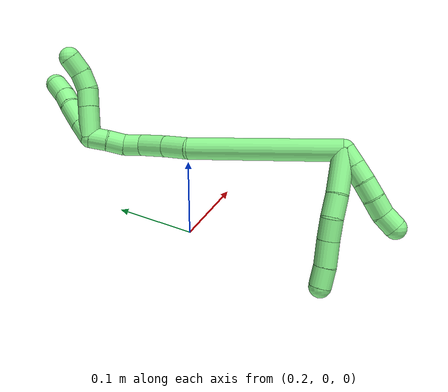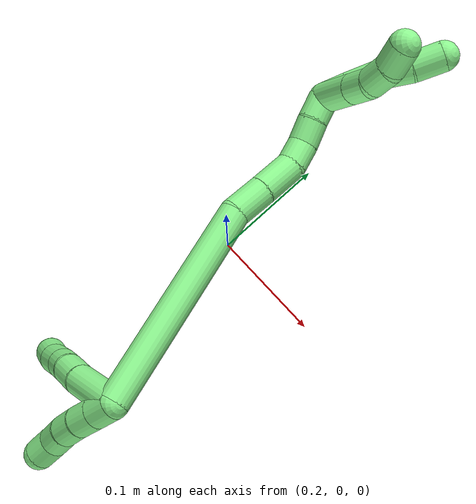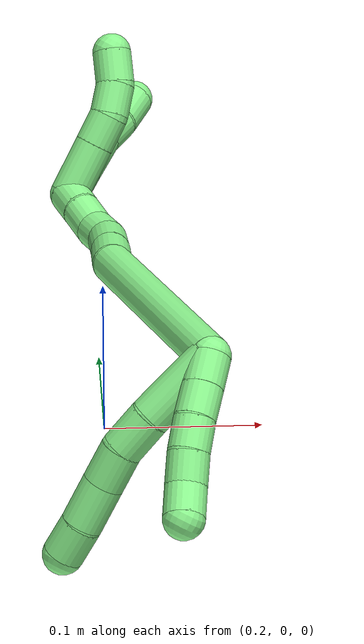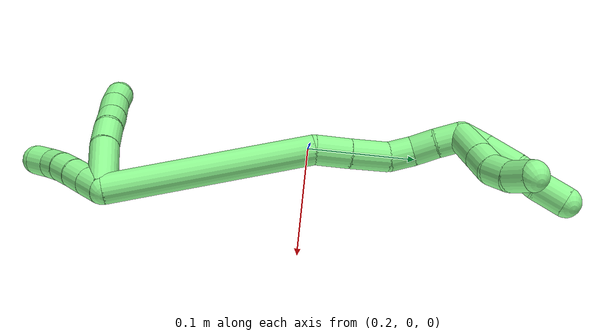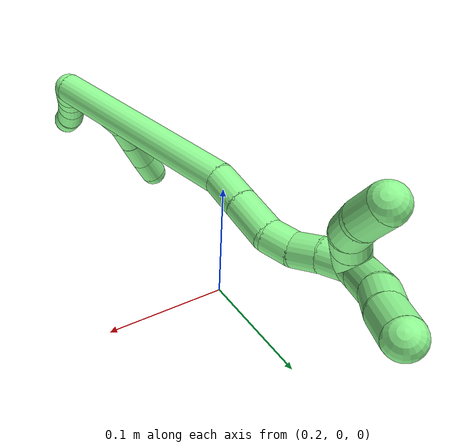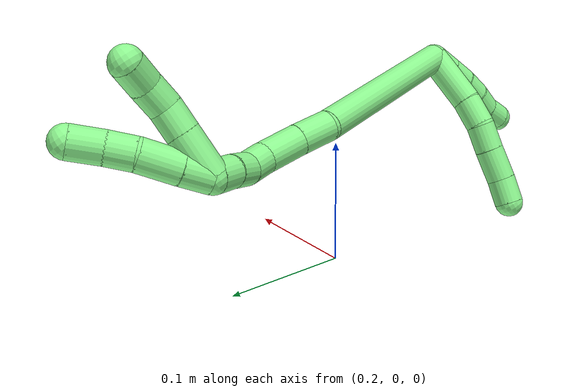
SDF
<sdf version="1.7">
 <world name="default">
  <model name="13">
   <static>0</static>
   <link name="13">
    <collision name="collision-cylinder-e_1_2_8">
     <pose>-0.002055 0.007439 0.023671 -0.304479 -0.082639 0.012686</pose>
     <geometry><cylinder><radius>0.0125</radius><length>0.049795</length></cylinder></geometry>
     <surface>
      <friction><ode><mu>1.16</mu><mu2>1.16</mu2><slip1>0</slip1><slip2>0</slip2></ode></friction>
      <contact><ode><kp>1e+06</kp><kd>1</kd><max_vel>0</max_vel><min_depth>0.001</min_depth></ode></contact>
     </surface>
    </collision>
    <visual name="visual-cylinder-e_1_2_8">
     <pose>-0.002055 0.007439 0.023671 -0.304479 -0.082639 0.012686</pose>
     <geometry><cylinder><radius>0.0125</radius><length>0.049795</length></cylinder></geometry>
     <material><ambient>0.564706 0.984314 0.572549 1</ambient></material>
    </visual>
    <collision name="collision-cylinder-e_2_8_9">
     <pose>-0.006634 0.01784 0.059442 -0.2401 -0.199859 0.024188</pose>
     <geometry><cylinder><radius>0.0125</radius><length>0.025419</length></cylinder></geometry>
     <surface>
      <friction><ode><mu>1.16</mu><mu2>1.16</mu2><slip1>0</slip1><slip2>0</slip2></ode></friction>
      <contact><ode><kp>1e+06</kp><kd>1</kd><max_vel>0</max_vel><min_depth>0.001</min_depth></ode></contact>
     </surface>
    </collision>
    <visual name="visual-cylinder-e_2_8_9">
     <pose>-0.006634 0.01784 0.059442 -0.2401 -0.199859 0.024188</pose>
     <geometry><cylinder><radius>0.0125</radius><length>0.025419</length></cylinder></geometry>
     <material><ambient>0.564706 0.984314 0.572549 1</ambient></material>
    </visual>
    <collision name="collision-cylinder-e_3_9_10">
     <pose>-0.012223 0.020954 0.08298 -0.013273 -0.261869 0.001748</pose>
     <geometry><cylinder><radius>0.0125</radius><length>0.023687</length></cylinder></geometry>
     <surface>
      <friction><ode><mu>1.16</mu><mu2>1.16</mu2><slip1>0</slip1><slip2>0</slip2></ode></friction>
      <contact><ode><kp>1e+06</kp><kd>1</kd><max_vel>0</max_vel><min_depth>0.001</min_depth></ode></contact>
     </surface>
    </collision>
    <visual name="visual-cylinder-e_3_9_10">
     <pose>-0.012223 0.020954 0.08298 -0.013273 -0.261869 0.001748</pose>
     <geometry><cylinder><radius>0.0125</radius><length>0.023687</length></cylinder></geometry>
     <material><ambient>0.564706 0.984314 0.572549 1</ambient></material>
    </visual>
    <collision name="collision-cylinder-e_4_10_11">
     <pose>-0.018353 0.021257 0.108359 -0.010887 -0.21632 0.001182</pose>
     <geometry><cylinder><radius>0.0125</radius><length>0.028548</length></cylinder></geometry>
     <surface>
      <friction><ode><mu>1.16</mu><mu2>1.16</mu2><slip1>0</slip1><slip2>0</slip2></ode></friction>
      <contact><ode><kp>1e+06</kp><kd>1</kd><max_vel>0</max_vel><min_depth>0.001</min_depth></ode></contact>
     </surface>
    </collision>
    <visual name="visual-cylinder-e_4_10_11">
     <pose>-0.018353 0.021257 0.108359 -0.010887 -0.21632 0.001182</pose>
     <geometry><cylinder><radius>0.0125</radius><length>0.028548</length></cylinder></geometry>
     <material><ambient>0.564706 0.984314 0.572549 1</ambient></material>
    </visual>
    <collision name="collision-cylinder-e_5_11_6">
     <pose>-0.024968 0.022078 0.13298 -0.062601 -0.320473 0.010121</pose>
     <geometry><cylinder><radius>0.0125</radius><length>0.022551</length></cylinder></geometry>
     <surface>
      <friction><ode><mu>1.16</mu><mu2>1.16</mu2><slip1>0</slip1><slip2>0</slip2></ode></friction>
      <contact><ode><kp>1e+06</kp><kd>1</kd><max_vel>0</max_vel><min_depth>0.001</min_depth></ode></contact>
     </surface>
    </collision>
    <visual name="visual-cylinder-e_5_11_6">
     <pose>-0.024968 0.022078 0.13298 -0.062601 -0.320473 0.010121</pose>
     <geometry><cylinder><radius>0.0125</radius><length>0.022551</length></cylinder></geometry>
     <material><ambient>0.564706 0.984314 0.572549 1</ambient></material>
    </visual>
    <collision name="collision-cylinder-e_1_2_12">
     <pose>0.004322 -0.001987 0.008796 0.222221 0.446929 0.0507</pose>
     <geometry><cylinder><radius>0.0125</radius><length>0.02</length></cylinder></geometry>
     <surface>
      <friction><ode><mu>1.16</mu><mu2>1.16</mu2><slip1>0</slip1><slip2>0</slip2></ode></friction>
      <contact><ode><kp>1e+06</kp><kd>1</kd><max_vel>0</max_vel><min_depth>0.001</min_depth></ode></contact>
     </surface>
    </collision>
    <visual name="visual-cylinder-e_1_2_12">
     <pose>0.004322 -0.001987 0.008796 0.222221 0.446929 0.0507</pose>
     <geometry><cylinder><radius>0.0125</radius><length>0.02</length></cylinder></geometry>
     <material><ambient>0.564706 0.984314 0.572549 1</ambient></material>
    </visual>
    <collision name="collision-cylinder-e_2_12_13">
     <pose>0.012881 -0.005918 0.026439 0.216185 0.437478 0.048236</pose>
     <geometry><cylinder><radius>0.0125</radius><length>0.02</length></cylinder></geometry>
     <surface>
      <friction><ode><mu>1.16</mu><mu2>1.16</mu2><slip1>0</slip1><slip2>0</slip2></ode></friction>
      <contact><ode><kp>1e+06</kp><kd>1</kd><max_vel>0</max_vel><min_depth>0.001</min_depth></ode></contact>
     </surface>
    </collision>
    <visual name="visual-cylinder-e_2_12_13">
     <pose>0.012881 -0.005918 0.026439 0.216185 0.437478 0.048236</pose>
     <geometry><cylinder><radius>0.0125</radius><length>0.02</length></cylinder></geometry>
     <material><ambient>0.564706 0.984314 0.572549 1</ambient></material>
    </visual>
    <collision name="collision-cylinder-e_3_13_14">
     <pose>0.020584 -0.010491 0.04429 0.284219 0.354005 0.051173</pose>
     <geometry><cylinder><radius>0.0125</radius><length>0.02</length></cylinder></geometry>
     <surface>
      <friction><ode><mu>1.16</mu><mu2>1.16</mu2><slip1>0</slip1><slip2>0</slip2></ode></friction>
      <contact><ode><kp>1e+06</kp><kd>1</kd><max_vel>0</max_vel><min_depth>0.001</min_depth></ode></contact>
     </surface>
    </collision>
    <visual name="visual-cylinder-e_3_13_14">
     <pose>0.020584 -0.010491 0.04429 0.284219 0.354005 0.051173</pose>
     <geometry><cylinder><radius>0.0125</radius><length>0.02</length></cylinder></geometry>
     <material><ambient>0.564706 0.984314 0.572549 1</ambient></material>
    </visual>
    <collision name="collision-cylinder-e_4_14_15">
     <pose>0.02679 -0.016792 0.062183 0.391564 0.277575 0.055391</pose>
     <geometry><cylinder><radius>0.0125</radius><length>0.02</length></cylinder></geometry>
     <surface>
      <friction><ode><mu>1.16</mu><mu2>1.16</mu2><slip1>0</slip1><slip2>0</slip2></ode></friction>
      <contact><ode><kp>1e+06</kp><kd>1</kd><max_vel>0</max_vel><min_depth>0.001</min_depth></ode></contact>
     </surface>
    </collision>
    <visual name="visual-cylinder-e_4_14_15">
     <pose>0.02679 -0.016792 0.062183 0.391564 0.277575 0.055391</pose>
     <geometry><cylinder><radius>0.0125</radius><length>0.02</length></cylinder></geometry>
     <material><ambient>0.564706 0.984314 0.572549 1</ambient></material>
    </visual>
    <collision name="collision-cylinder-e_5_15_5">
     <pose>0.034739 -0.023793 0.078933 0.400791 0.547785 0.114012</pose>
     <geometry><cylinder><radius>0.0125</radius><length>0.02</length></cylinder></geometry>
     <surface>
      <friction><ode><mu>1.16</mu><mu2>1.16</mu2><slip1>0</slip1><slip2>0</slip2></ode></friction>
      <contact><ode><kp>1e+06</kp><kd>1</kd><max_vel>0</max_vel><min_depth>0.001</min_depth></ode></contact>
     </surface>
    </collision>
    <visual name="visual-cylinder-e_5_15_5">
     <pose>0.034739 -0.023793 0.078933 0.400791 0.547785 0.114012</pose>
     <geometry><cylinder><radius>0.0125</radius><length>0.02</length></cylinder></geometry>
     <material><ambient>0.564706 0.984314 0.572549 1</ambient></material>
    </visual>
    <collision name="collision-cylinder-e_1_2_16">
     <pose>-0.078336 0.03683 -0.008054 -1.78608 -1.12225 1.32586</pose>
     <geometry><cylinder><radius>0.0125</radius><length>0.173872</length></cylinder></geometry>
     <surface>
      <friction><ode><mu>1.16</mu><mu2>1.16</mu2><slip1>0</slip1><slip2>0</slip2></ode></friction>
      <contact><ode><kp>1e+06</kp><kd>1</kd><max_vel>0</max_vel><min_depth>0.001</min_depth></ode></contact>
     </surface>
    </collision>
    <visual name="visual-cylinder-e_1_2_16">
     <pose>-0.078336 0.03683 -0.008054 -1.78608 -1.12225 1.32586</pose>
     <geometry><cylinder><radius>0.0125</radius><length>0.173872</length></cylinder></geometry>
     <material><ambient>0.564706 0.984314 0.572549 1</ambient></material>
    </visual>
    <collision name="collision-cylinder-e_2_16_17">
     <pose>-0.17125 0.075876 -0.018732 -2.44042 -1.33942 2.27624</pose>
     <geometry><cylinder><radius>0.0125</radius><length>0.029954</length></cylinder></geometry>
     <surface>
      <friction><ode><mu>1.16</mu><mu2>1.16</mu2><slip1>0</slip1><slip2>0</slip2></ode></friction>
      <contact><ode><kp>1e+06</kp><kd>1</kd><max_vel>0</max_vel><min_depth>0.001</min_depth></ode></contact>
     </surface>
    </collision>
    <visual name="visual-cylinder-e_2_16_17">
     <pose>-0.17125 0.075876 -0.018732 -2.44042 -1.33942 2.27624</pose>
     <geometry><cylinder><radius>0.0125</radius><length>0.029954</length></cylinder></geometry>
     <material><ambient>0.564706 0.984314 0.572549 1</ambient></material>
    </visual>
    <collision name="collision-cylinder-e_3_17_18">
     <pose>-0.20209 0.080685 -0.023668 -2.29871 -1.36031 2.12947</pose>
     <geometry><cylinder><radius>0.0125</radius><length>0.033259</length></cylinder></geometry>
     <surface>
      <friction><ode><mu>1.16</mu><mu2>1.16</mu2><slip1>0</slip1><slip2>0</slip2></ode></friction>
      <contact><ode><kp>1e+06</kp><kd>1</kd><max_vel>0</max_vel><min_depth>0.001</min_depth></ode></contact>
     </surface>
    </collision>
    <visual name="visual-cylinder-e_3_17_18">
     <pose>-0.20209 0.080685 -0.023668 -2.29871 -1.36031 2.12947</pose>
     <geometry><cylinder><radius>0.0125</radius><length>0.033259</length></cylinder></geometry>
     <material><ambient>0.564706 0.984314 0.572549 1</ambient></material>
    </visual>
    <collision name="collision-cylinder-e_4_18_19">
     <pose>-0.227592 0.088264 -0.026911 -1.75559 -1.06886 1.23849</pose>
     <geometry><cylinder><radius>0.0125</radius><length>0.021079</length></cylinder></geometry>
     <surface>
      <friction><ode><mu>1.16</mu><mu2>1.16</mu2><slip1>0</slip1><slip2>0</slip2></ode></friction>
      <contact><ode><kp>1e+06</kp><kd>1</kd><max_vel>0</max_vel><min_depth>0.001</min_depth></ode></contact>
     </surface>
    </collision>
    <visual name="visual-cylinder-e_4_18_19">
     <pose>-0.227592 0.088264 -0.026911 -1.75559 -1.06886 1.23849</pose>
     <geometry><cylinder><radius>0.0125</radius><length>0.021079</length></cylinder></geometry>
     <material><ambient>0.564706 0.984314 0.572549 1</ambient></material>
    </visual>
    <collision name="collision-cylinder-e_5_19_20">
     <pose>-0.244127 0.099965 -0.030954 -2.00453 -0.778104 1.14096</pose>
     <geometry><cylinder><radius>0.0125</radius><length>0.020786</length></cylinder></geometry>
     <surface>
      <friction><ode><mu>1.16</mu><mu2>1.16</mu2><slip1>0</slip1><slip2>0</slip2></ode></friction>
      <contact><ode><kp>1e+06</kp><kd>1</kd><max_vel>0</max_vel><min_depth>0.001</min_depth></ode></contact>
     </surface>
    </collision>
    <visual name="visual-cylinder-e_5_19_20">
     <pose>-0.244127 0.099965 -0.030954 -2.00453 -0.778104 1.14096</pose>
     <geometry><cylinder><radius>0.0125</radius><length>0.020786</length></cylinder></geometry>
     <material><ambient>0.564706 0.984314 0.572549 1</ambient></material>
    </visual>
    <collision name="collision-cylinder-e_6_20_1">
     <pose>-0.25963 0.112737 -0.036661 -1.97588 -0.894497 1.258</pose>
     <geometry><cylinder><radius>0.0125</radius><length>0.021051</length></cylinder></geometry>
     <surface>
      <friction><ode><mu>1.16</mu><mu2>1.16</mu2><slip1>0</slip1><slip2>0</slip2></ode></friction>
      <contact><ode><kp>1e+06</kp><kd>1</kd><max_vel>0</max_vel><min_depth>0.001</min_depth></ode></contact>
     </surface>
    </collision>
    <visual name="visual-cylinder-e_6_20_1">
     <pose>-0.25963 0.112737 -0.036661 -1.97588 -0.894497 1.258</pose>
     <geometry><cylinder><radius>0.0125</radius><length>0.021051</length></cylinder></geometry>
     <material><ambient>0.564706 0.984314 0.572549 1</ambient></material>
    </visual>
    <collision name="collision-cylinder-e_1_1_21">
     <pose>-0.267758 0.118807 -0.057261 -3.14073 0.004486 -2.76323</pose>
     <geometry><cylinder><radius>0.0125</radius><length>0.036009</length></cylinder></geometry>
     <surface>
      <friction><ode><mu>1.16</mu><mu2>1.16</mu2><slip1>0</slip1><slip2>0</slip2></ode></friction>
      <contact><ode><kp>1e+06</kp><kd>1</kd><max_vel>0</max_vel><min_depth>0.001</min_depth></ode></contact>
     </surface>
    </collision>
    <visual name="visual-cylinder-e_1_1_21">
     <pose>-0.267758 0.118807 -0.057261 -3.14073 0.004486 -2.76323</pose>
     <geometry><cylinder><radius>0.0125</radius><length>0.036009</length></cylinder></geometry>
     <material><ambient>0.564706 0.984314 0.572549 1</ambient></material>
    </visual>
    <collision name="collision-cylinder-e_2_21_22">
     <pose>-0.267624 0.118836 -0.085822 -3.14032 0.005053 -2.64616</pose>
     <geometry><cylinder><radius>0.0125</radius><length>0.021113</length></cylinder></geometry>
     <surface>
      <friction><ode><mu>1.16</mu><mu2>1.16</mu2><slip1>0</slip1><slip2>0</slip2></ode></friction>
      <contact><ode><kp>1e+06</kp><kd>1</kd><max_vel>0</max_vel><min_depth>0.001</min_depth></ode></contact>
     </surface>
    </collision>
    <visual name="visual-cylinder-e_2_21_22">
     <pose>-0.267624 0.118836 -0.085822 -3.14032 0.005053 -2.64616</pose>
     <geometry><cylinder><radius>0.0125</radius><length>0.021113</length></cylinder></geometry>
     <material><ambient>0.564706 0.984314 0.572549 1</ambient></material>
    </visual>
    <collision name="collision-cylinder-e_3_22_23">
     <pose>-0.269649 0.121607 -0.106323 -2.87107 -0.198724 1.26443</pose>
     <geometry><cylinder><radius>0.0125</radius><length>0.021053</length></cylinder></geometry>
     <surface>
      <friction><ode><mu>1.16</mu><mu2>1.16</mu2><slip1>0</slip1><slip2>0</slip2></ode></friction>
      <contact><ode><kp>1e+06</kp><kd>1</kd><max_vel>0</max_vel><min_depth>0.001</min_depth></ode></contact>
     </surface>
    </collision>
    <visual name="visual-cylinder-e_3_22_23">
     <pose>-0.269649 0.121607 -0.106323 -2.87107 -0.198724 1.26443</pose>
     <geometry><cylinder><radius>0.0125</radius><length>0.021053</length></cylinder></geometry>
     <material><ambient>0.564706 0.984314 0.572549 1</ambient></material>
    </visual>
    <collision name="collision-cylinder-e_4_23_4">
     <pose>-0.274215 0.130194 -0.125149 -2.56079 -0.230008 0.737682</pose>
     <geometry><cylinder><radius>0.0125</radius><length>0.021825</length></cylinder></geometry>
     <surface>
      <friction><ode><mu>1.16</mu><mu2>1.16</mu2><slip1>0</slip1><slip2>0</slip2></ode></friction>
      <contact><ode><kp>1e+06</kp><kd>1</kd><max_vel>0</max_vel><min_depth>0.001</min_depth></ode></contact>
     </surface>
    </collision>
    <visual name="visual-cylinder-e_4_23_4">
     <pose>-0.274215 0.130194 -0.125149 -2.56079 -0.230008 0.737682</pose>
     <geometry><cylinder><radius>0.0125</radius><length>0.021825</length></cylinder></geometry>
     <material><ambient>0.564706 0.984314 0.572549 1</ambient></material>
    </visual>
    <collision name="collision-cylinder-e_1_1_24">
     <pose>-0.274986 0.118575 -0.047772 3.11624 -0.698107 -3.07196</pose>
     <geometry><cylinder><radius>0.0125</radius><length>0.022238</length></cylinder></geometry>
     <surface>
      <friction><ode><mu>1.16</mu><mu2>1.16</mu2><slip1>0</slip1><slip2>0</slip2></ode></friction>
      <contact><ode><kp>1e+06</kp><kd>1</kd><max_vel>0</max_vel><min_depth>0.001</min_depth></ode></contact>
     </surface>
    </collision>
    <visual name="visual-cylinder-e_1_1_24">
     <pose>-0.274986 0.118575 -0.047772 3.11624 -0.698107 -3.07196</pose>
     <geometry><cylinder><radius>0.0125</radius><length>0.022238</length></cylinder></geometry>
     <material><ambient>0.564706 0.984314 0.572549 1</ambient></material>
    </visual>
    <collision name="collision-cylinder-e_2_24_25">
     <pose>-0.291666 0.117742 -0.068601 3.09146 -0.658174 -2.99501</pose>
     <geometry><cylinder><radius>0.0125</radius><length>0.031172</length></cylinder></geometry>
     <surface>
      <friction><ode><mu>1.16</mu><mu2>1.16</mu2><slip1>0</slip1><slip2>0</slip2></ode></friction>
      <contact><ode><kp>1e+06</kp><kd>1</kd><max_vel>0</max_vel><min_depth>0.001</min_depth></ode></contact>
     </surface>
    </collision>
    <visual name="visual-cylinder-e_2_24_25">
     <pose>-0.291666 0.117742 -0.068601 3.09146 -0.658174 -2.99501</pose>
     <geometry><cylinder><radius>0.0125</radius><length>0.031172</length></cylinder></geometry>
     <material><ambient>0.564706 0.984314 0.572549 1</ambient></material>
    </visual>
    <collision name="collision-cylinder-e_3_25_26">
     <pose>-0.308213 0.114717 -0.088548 2.83611 -0.719626 -2.36476</pose>
     <geometry><cylinder><radius>0.0125</radius><length>0.021281</length></cylinder></geometry>
     <surface>
      <friction><ode><mu>1.16</mu><mu2>1.16</mu2><slip1>0</slip1><slip2>0</slip2></ode></friction>
      <contact><ode><kp>1e+06</kp><kd>1</kd><max_vel>0</max_vel><min_depth>0.001</min_depth></ode></contact>
     </surface>
    </collision>
    <visual name="visual-cylinder-e_3_25_26">
     <pose>-0.308213 0.114717 -0.088548 2.83611 -0.719626 -2.36476</pose>
     <geometry><cylinder><radius>0.0125</radius><length>0.021281</length></cylinder></geometry>
     <material><ambient>0.564706 0.984314 0.572549 1</ambient></material>
    </visual>
    <collision name="collision-cylinder-e_4_26_3">
     <pose>-0.324354 0.111196 -0.104874 3.01413 -0.805671 -2.8443</pose>
     <geometry><cylinder><radius>0.0125</radius><length>0.02531</length></cylinder></geometry>
     <surface>
      <friction><ode><mu>1.16</mu><mu2>1.16</mu2><slip1>0</slip1><slip2>0</slip2></ode></friction>
      <contact><ode><kp>1e+06</kp><kd>1</kd><max_vel>0</max_vel><min_depth>0.001</min_depth></ode></contact>
     </surface>
    </collision>
    <visual name="visual-cylinder-e_4_26_3">
     <pose>-0.324354 0.111196 -0.104874 3.01413 -0.805671 -2.8443</pose>
     <geometry><cylinder><radius>0.0125</radius><length>0.02531</length></cylinder></geometry>
     <material><ambient>0.564706 0.984314 0.572549 1</ambient></material>
    </visual>
    <collision name="collision-sphere-3">
     <pose>-0.333482 0.110082 -0.113568 0 -0 0</pose>
     <geometry><sphere><radius>0.0125</radius></sphere></geometry>
     <surface>
      <friction><ode><mu>1.16</mu><mu2>1.16</mu2><slip1>0</slip1><slip2>0</slip2></ode></friction>
      <contact><ode><kp>1e+06</kp><kd>1</kd><max_vel>0</max_vel><min_depth>0.001</min_depth></ode></contact>
     </surface>
    </collision>
    <visual name="visual-sphere-3">
     <pose>-0.333482 0.110082 -0.113568 0 -0 0</pose>
     <geometry><sphere><radius>0.0125</radius></sphere></geometry>
     <material><ambient>0.564706 0.984314 0.572549 1</ambient></material>
    </visual>
    <collision name="collision-sphere-26">
     <pose>-0.315226 0.11231 -0.096179 0 -0 0</pose>
     <geometry><sphere><radius>0.0125</radius></sphere></geometry>
     <surface>
      <friction><ode><mu>1.16</mu><mu2>1.16</mu2><slip1>0</slip1><slip2>0</slip2></ode></friction>
      <contact><ode><kp>1e+06</kp><kd>1</kd><max_vel>0</max_vel><min_depth>0.001</min_depth></ode></contact>
     </surface>
    </collision>
    <visual name="visual-sphere-26">
     <pose>-0.315226 0.11231 -0.096179 0 -0 0</pose>
     <geometry><sphere><radius>0.0125</radius></sphere></geometry>
     <material><ambient>0.564706 0.984314 0.572549 1</ambient></material>
    </visual>
    <collision name="collision-sphere-25">
     <pose>-0.3012 0.117124 -0.080916 0 -0 0</pose>
     <geometry><sphere><radius>0.0125</radius></sphere></geometry>
     <surface>
      <friction><ode><mu>1.16</mu><mu2>1.16</mu2><slip1>0</slip1><slip2>0</slip2></ode></friction>
      <contact><ode><kp>1e+06</kp><kd>1</kd><max_vel>0</max_vel><min_depth>0.001</min_depth></ode></contact>
     </surface>
    </collision>
    <visual name="visual-sphere-25">
     <pose>-0.3012 0.117124 -0.080916 0 -0 0</pose>
     <geometry><sphere><radius>0.0125</radius></sphere></geometry>
     <material><ambient>0.564706 0.984314 0.572549 1</ambient></material>
    </visual>
    <collision name="collision-sphere-24">
     <pose>-0.282133 0.118359 -0.056287 0 -0 0</pose>
     <geometry><sphere><radius>0.0125</radius></sphere></geometry>
     <surface>
      <friction><ode><mu>1.16</mu><mu2>1.16</mu2><slip1>0</slip1><slip2>0</slip2></ode></friction>
      <contact><ode><kp>1e+06</kp><kd>1</kd><max_vel>0</max_vel><min_depth>0.001</min_depth></ode></contact>
     </surface>
    </collision>
    <visual name="visual-sphere-24">
     <pose>-0.282133 0.118359 -0.056287 0 -0 0</pose>
     <geometry><sphere><radius>0.0125</radius></sphere></geometry>
     <material><ambient>0.564706 0.984314 0.572549 1</ambient></material>
    </visual>
    <collision name="collision-sphere-4">
     <pose>-0.276703 0.136024 -0.134032 0 -0 0</pose>
     <geometry><sphere><radius>0.0125</radius></sphere></geometry>
     <surface>
      <friction><ode><mu>1.16</mu><mu2>1.16</mu2><slip1>0</slip1><slip2>0</slip2></ode></friction>
      <contact><ode><kp>1e+06</kp><kd>1</kd><max_vel>0</max_vel><min_depth>0.001</min_depth></ode></contact>
     </surface>
    </collision>
    <visual name="visual-sphere-4">
     <pose>-0.276703 0.136024 -0.134032 0 -0 0</pose>
     <geometry><sphere><radius>0.0125</radius></sphere></geometry>
     <material><ambient>0.564706 0.984314 0.572549 1</ambient></material>
    </visual>
    <collision name="collision-sphere-23">
     <pose>-0.271727 0.124365 -0.116267 0 -0 0</pose>
     <geometry><sphere><radius>0.0125</radius></sphere></geometry>
     <surface>
      <friction><ode><mu>1.16</mu><mu2>1.16</mu2><slip1>0</slip1><slip2>0</slip2></ode></friction>
      <contact><ode><kp>1e+06</kp><kd>1</kd><max_vel>0</max_vel><min_depth>0.001</min_depth></ode></contact>
     </surface>
    </collision>
    <visual name="visual-sphere-23">
     <pose>-0.271727 0.124365 -0.116267 0 -0 0</pose>
     <geometry><sphere><radius>0.0125</radius></sphere></geometry>
     <material><ambient>0.564706 0.984314 0.572549 1</ambient></material>
    </visual>
    <collision name="collision-sphere-22">
     <pose>-0.267571 0.118849 -0.096379 0 -0 0</pose>
     <geometry><sphere><radius>0.0125</radius></sphere></geometry>
     <surface>
      <friction><ode><mu>1.16</mu><mu2>1.16</mu2><slip1>0</slip1><slip2>0</slip2></ode></friction>
      <contact><ode><kp>1e+06</kp><kd>1</kd><max_vel>0</max_vel><min_depth>0.001</min_depth></ode></contact>
     </surface>
    </collision>
    <visual name="visual-sphere-22">
     <pose>-0.267571 0.118849 -0.096379 0 -0 0</pose>
     <geometry><sphere><radius>0.0125</radius></sphere></geometry>
     <material><ambient>0.564706 0.984314 0.572549 1</ambient></material>
    </visual>
    <collision name="collision-sphere-21">
     <pose>-0.267678 0.118822 -0.075266 0 -0 0</pose>
     <geometry><sphere><radius>0.0125</radius></sphere></geometry>
     <surface>
      <friction><ode><mu>1.16</mu><mu2>1.16</mu2><slip1>0</slip1><slip2>0</slip2></ode></friction>
      <contact><ode><kp>1e+06</kp><kd>1</kd><max_vel>0</max_vel><min_depth>0.001</min_depth></ode></contact>
     </surface>
    </collision>
    <visual name="visual-sphere-21">
     <pose>-0.267678 0.118822 -0.075266 0 -0 0</pose>
     <geometry><sphere><radius>0.0125</radius></sphere></geometry>
     <material><ambient>0.564706 0.984314 0.572549 1</ambient></material>
    </visual>
    <collision name="collision-sphere-1">
     <pose>-0.267839 0.118791 -0.039257 0 -0 0</pose>
     <geometry><sphere><radius>0.0125</radius></sphere></geometry>
     <surface>
      <friction><ode><mu>1.16</mu><mu2>1.16</mu2><slip1>0</slip1><slip2>0</slip2></ode></friction>
      <contact><ode><kp>1e+06</kp><kd>1</kd><max_vel>0</max_vel><min_depth>0.001</min_depth></ode></contact>
     </surface>
    </collision>
    <visual name="visual-sphere-1">
     <pose>-0.267839 0.118791 -0.039257 0 -0 0</pose>
     <geometry><sphere><radius>0.0125</radius></sphere></geometry>
     <material><ambient>0.564706 0.984314 0.572549 1</ambient></material>
    </visual>
    <collision name="collision-sphere-6">
     <pose>-0.02852 0.022748 0.14366 0 -0 0</pose>
     <geometry><sphere><radius>0.0125</radius></sphere></geometry>
     <surface>
      <friction><ode><mu>1.16</mu><mu2>1.16</mu2><slip1>0</slip1><slip2>0</slip2></ode></friction>
      <contact><ode><kp>1e+06</kp><kd>1</kd><max_vel>0</max_vel><min_depth>0.001</min_depth></ode></contact>
     </surface>
    </collision>
    <visual name="visual-sphere-6">
     <pose>-0.02852 0.022748 0.14366 0 -0 0</pose>
     <geometry><sphere><radius>0.0125</radius></sphere></geometry>
     <material><ambient>0.564706 0.984314 0.572549 1</ambient></material>
    </visual>
    <collision name="collision-sphere-11">
     <pose>-0.021416 0.021409 0.1223 0 -0 0</pose>
     <geometry><sphere><radius>0.0125</radius></sphere></geometry>
     <surface>
      <friction><ode><mu>1.16</mu><mu2>1.16</mu2><slip1>0</slip1><slip2>0</slip2></ode></friction>
      <contact><ode><kp>1e+06</kp><kd>1</kd><max_vel>0</max_vel><min_depth>0.001</min_depth></ode></contact>
     </surface>
    </collision>
    <visual name="visual-sphere-11">
     <pose>-0.021416 0.021409 0.1223 0 -0 0</pose>
     <geometry><sphere><radius>0.0125</radius></sphere></geometry>
     <material><ambient>0.564706 0.984314 0.572549 1</ambient></material>
    </visual>
    <collision name="collision-sphere-10">
     <pose>-0.015289 0.021105 0.094419 0 -0 0</pose>
     <geometry><sphere><radius>0.0125</radius></sphere></geometry>
     <surface>
      <friction><ode><mu>1.16</mu><mu2>1.16</mu2><slip1>0</slip1><slip2>0</slip2></ode></friction>
      <contact><ode><kp>1e+06</kp><kd>1</kd><max_vel>0</max_vel><min_depth>0.001</min_depth></ode></contact>
     </surface>
    </collision>
    <visual name="visual-sphere-10">
     <pose>-0.015289 0.021105 0.094419 0 -0 0</pose>
     <geometry><sphere><radius>0.0125</radius></sphere></geometry>
     <material><ambient>0.564706 0.984314 0.572549 1</ambient></material>
    </visual>
    <collision name="collision-sphere-9">
     <pose>-0.009157 0.020802 0.071541 0 -0 0</pose>
     <geometry><sphere><radius>0.0125</radius></sphere></geometry>
     <surface>
      <friction><ode><mu>1.16</mu><mu2>1.16</mu2><slip1>0</slip1><slip2>0</slip2></ode></friction>
      <contact><ode><kp>1e+06</kp><kd>1</kd><max_vel>0</max_vel><min_depth>0.001</min_depth></ode></contact>
     </surface>
    </collision>
    <visual name="visual-sphere-9">
     <pose>-0.009157 0.020802 0.071541 0 -0 0</pose>
     <geometry><sphere><radius>0.0125</radius></sphere></geometry>
     <material><ambient>0.564706 0.984314 0.572549 1</ambient></material>
    </visual>
    <collision name="collision-sphere-2">
     <geometry><sphere><radius>0.0125</radius></sphere></geometry>
     <surface>
      <friction><ode><mu>1.16</mu><mu2>1.16</mu2><slip1>0</slip1><slip2>0</slip2></ode></friction>
      <contact><ode><kp>1e+06</kp><kd>1</kd><max_vel>0</max_vel><min_depth>0.001</min_depth></ode></contact>
     </surface>
    </collision>
    <visual name="visual-sphere-2">
     <geometry><sphere><radius>0.0125</radius></sphere></geometry>
     <material><ambient>0.564706 0.984314 0.572549 1</ambient></material>
    </visual>
    <collision name="collision-sphere-19">
     <pose>-0.236832 0.093248 -0.027843 0 -0 0</pose>
     <geometry><sphere><radius>0.0125</radius></sphere></geometry>
     <surface>
      <friction><ode><mu>1.16</mu><mu2>1.16</mu2><slip1>0</slip1><slip2>0</slip2></ode></friction>
      <contact><ode><kp>1e+06</kp><kd>1</kd><max_vel>0</max_vel><min_depth>0.001</min_depth></ode></contact>
     </surface>
    </collision>
    <visual name="visual-sphere-19">
     <pose>-0.236832 0.093248 -0.027843 0 -0 0</pose>
     <geometry><sphere><radius>0.0125</radius></sphere></geometry>
     <material><ambient>0.564706 0.984314 0.572549 1</ambient></material>
    </visual>
    <collision name="collision-sphere-8">
     <pose>-0.00411 0.014878 0.047343 0 -0 0</pose>
     <geometry><sphere><radius>0.0125</radius></sphere></geometry>
     <surface>
      <friction><ode><mu>1.16</mu><mu2>1.16</mu2><slip1>0</slip1><slip2>0</slip2></ode></friction>
      <contact><ode><kp>1e+06</kp><kd>1</kd><max_vel>0</max_vel><min_depth>0.001</min_depth></ode></contact>
     </surface>
    </collision>
    <visual name="visual-sphere-8">
     <pose>-0.00411 0.014878 0.047343 0 -0 0</pose>
     <geometry><sphere><radius>0.0125</radius></sphere></geometry>
     <material><ambient>0.564706 0.984314 0.572549 1</ambient></material>
    </visual>
    <collision name="collision-sphere-12">
     <pose>0.008644 -0.003975 0.017592 0 -0 0</pose>
     <geometry><sphere><radius>0.0125</radius></sphere></geometry>
     <surface>
      <friction><ode><mu>1.16</mu><mu2>1.16</mu2><slip1>0</slip1><slip2>0</slip2></ode></friction>
      <contact><ode><kp>1e+06</kp><kd>1</kd><max_vel>0</max_vel><min_depth>0.001</min_depth></ode></contact>
     </surface>
    </collision>
    <visual name="visual-sphere-12">
     <pose>0.008644 -0.003975 0.017592 0 -0 0</pose>
     <geometry><sphere><radius>0.0125</radius></sphere></geometry>
     <material><ambient>0.564706 0.984314 0.572549 1</ambient></material>
    </visual>
    <collision name="collision-sphere-13">
     <pose>0.017117 -0.007861 0.035287 0 -0 0</pose>
     <geometry><sphere><radius>0.0125</radius></sphere></geometry>
     <surface>
      <friction><ode><mu>1.16</mu><mu2>1.16</mu2><slip1>0</slip1><slip2>0</slip2></ode></friction>
      <contact><ode><kp>1e+06</kp><kd>1</kd><max_vel>0</max_vel><min_depth>0.001</min_depth></ode></contact>
     </surface>
    </collision>
    <visual name="visual-sphere-13">
     <pose>0.017117 -0.007861 0.035287 0 -0 0</pose>
     <geometry><sphere><radius>0.0125</radius></sphere></geometry>
     <material><ambient>0.564706 0.984314 0.572549 1</ambient></material>
    </visual>
    <collision name="collision-sphere-14">
     <pose>0.02405 -0.013121 0.053294 0 -0 0</pose>
     <geometry><sphere><radius>0.0125</radius></sphere></geometry>
     <surface>
      <friction><ode><mu>1.16</mu><mu2>1.16</mu2><slip1>0</slip1><slip2>0</slip2></ode></friction>
      <contact><ode><kp>1e+06</kp><kd>1</kd><max_vel>0</max_vel><min_depth>0.001</min_depth></ode></contact>
     </surface>
    </collision>
    <visual name="visual-sphere-14">
     <pose>0.02405 -0.013121 0.053294 0 -0 0</pose>
     <geometry><sphere><radius>0.0125</radius></sphere></geometry>
     <material><ambient>0.564706 0.984314 0.572549 1</ambient></material>
    </visual>
    <collision name="collision-sphere-15">
     <pose>0.029531 -0.020462 0.071073 0 -0 0</pose>
     <geometry><sphere><radius>0.0125</radius></sphere></geometry>
     <surface>
      <friction><ode><mu>1.16</mu><mu2>1.16</mu2><slip1>0</slip1><slip2>0</slip2></ode></friction>
      <contact><ode><kp>1e+06</kp><kd>1</kd><max_vel>0</max_vel><min_depth>0.001</min_depth></ode></contact>
     </surface>
    </collision>
    <visual name="visual-sphere-15">
     <pose>0.029531 -0.020462 0.071073 0 -0 0</pose>
     <geometry><sphere><radius>0.0125</radius></sphere></geometry>
     <material><ambient>0.564706 0.984314 0.572549 1</ambient></material>
    </visual>
    <collision name="collision-sphere-5">
     <pose>0.039947 -0.027123 0.086793 0 -0 0</pose>
     <geometry><sphere><radius>0.0125</radius></sphere></geometry>
     <surface>
      <friction><ode><mu>1.16</mu><mu2>1.16</mu2><slip1>0</slip1><slip2>0</slip2></ode></friction>
      <contact><ode><kp>1e+06</kp><kd>1</kd><max_vel>0</max_vel><min_depth>0.001</min_depth></ode></contact>
     </surface>
    </collision>
    <visual name="visual-sphere-5">
     <pose>0.039947 -0.027123 0.086793 0 -0 0</pose>
     <geometry><sphere><radius>0.0125</radius></sphere></geometry>
     <material><ambient>0.564706 0.984314 0.572549 1</ambient></material>
    </visual>
    <collision name="collision-sphere-16">
     <pose>-0.156672 0.07366 -0.016107 0 -0 0</pose>
     <geometry><sphere><radius>0.0125</radius></sphere></geometry>
     <surface>
      <friction><ode><mu>1.16</mu><mu2>1.16</mu2><slip1>0</slip1><slip2>0</slip2></ode></friction>
      <contact><ode><kp>1e+06</kp><kd>1</kd><max_vel>0</max_vel><min_depth>0.001</min_depth></ode></contact>
     </surface>
    </collision>
    <visual name="visual-sphere-16">
     <pose>-0.156672 0.07366 -0.016107 0 -0 0</pose>
     <geometry><sphere><radius>0.0125</radius></sphere></geometry>
     <material><ambient>0.564706 0.984314 0.572549 1</ambient></material>
    </visual>
    <collision name="collision-sphere-17">
     <pose>-0.185828 0.078091 -0.021356 0 -0 0</pose>
     <geometry><sphere><radius>0.0125</radius></sphere></geometry>
     <surface>
      <friction><ode><mu>1.16</mu><mu2>1.16</mu2><slip1>0</slip1><slip2>0</slip2></ode></friction>
      <contact><ode><kp>1e+06</kp><kd>1</kd><max_vel>0</max_vel><min_depth>0.001</min_depth></ode></contact>
     </surface>
    </collision>
    <visual name="visual-sphere-17">
     <pose>-0.185828 0.078091 -0.021356 0 -0 0</pose>
     <geometry><sphere><radius>0.0125</radius></sphere></geometry>
     <material><ambient>0.564706 0.984314 0.572549 1</ambient></material>
    </visual>
    <collision name="collision-sphere-18">
     <pose>-0.218353 0.083279 -0.025979 0 -0 0</pose>
     <geometry><sphere><radius>0.0125</radius></sphere></geometry>
     <surface>
      <friction><ode><mu>1.16</mu><mu2>1.16</mu2><slip1>0</slip1><slip2>0</slip2></ode></friction>
      <contact><ode><kp>1e+06</kp><kd>1</kd><max_vel>0</max_vel><min_depth>0.001</min_depth></ode></contact>
     </surface>
    </collision>
    <visual name="visual-sphere-18">
     <pose>-0.218353 0.083279 -0.025979 0 -0 0</pose>
     <geometry><sphere><radius>0.0125</radius></sphere></geometry>
     <material><ambient>0.564706 0.984314 0.572549 1</ambient></material>
    </visual>
    <collision name="collision-sphere-20">
     <pose>-0.251422 0.106682 -0.034064 0 -0 0</pose>
     <geometry><sphere><radius>0.0125</radius></sphere></geometry>
     <surface>
      <friction><ode><mu>1.16</mu><mu2>1.16</mu2><slip1>0</slip1><slip2>0</slip2></ode></friction>
      <contact><ode><kp>1e+06</kp><kd>1</kd><max_vel>0</max_vel><min_depth>0.001</min_depth></ode></contact>
     </surface>
    </collision>
    <visual name="visual-sphere-20">
     <pose>-0.251422 0.106682 -0.034064 0 -0 0</pose>
     <geometry><sphere><radius>0.0125</radius></sphere></geometry>
     <material><ambient>0.564706 0.984314 0.572549 1</ambient></material>
    </visual>
    <inertial>
     <pose>-0.129865 0.056891 -0.008205 0 -0 0</pose>
     <mass>0.75</mass>
     <inertia>
      <ixx>0.000227</ixx>
      <ixy>0</ixy>
      <ixz>0</ixz>
      <iyy>0.000609</iyy>
      <iyz>0</iyz>
      <izz>0.000226</izz>
     </inertia>
    </inertial>
   </link>
   <pose>0.256364 -0.161979 0.13155 2.66958 -0.404467 -1.61987</pose>
  </model>
 </world>
</sdf>
